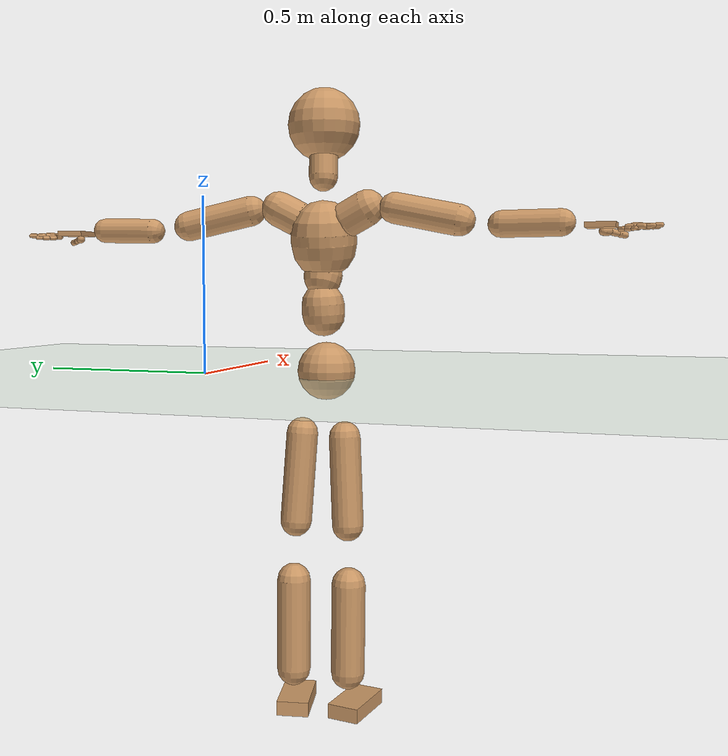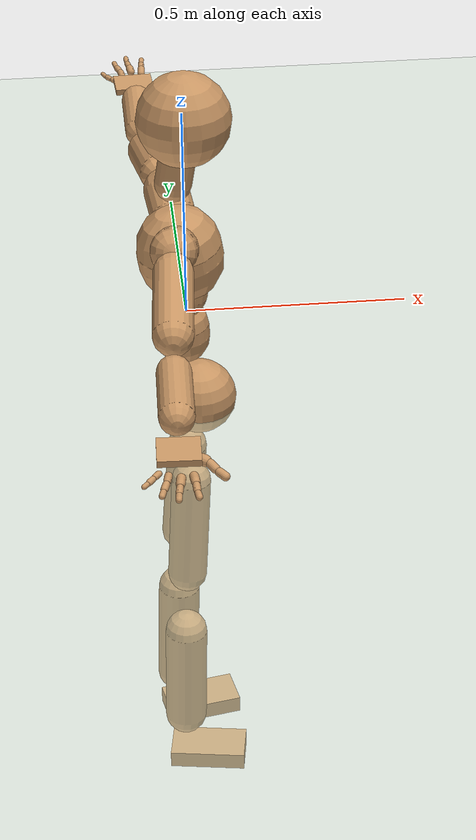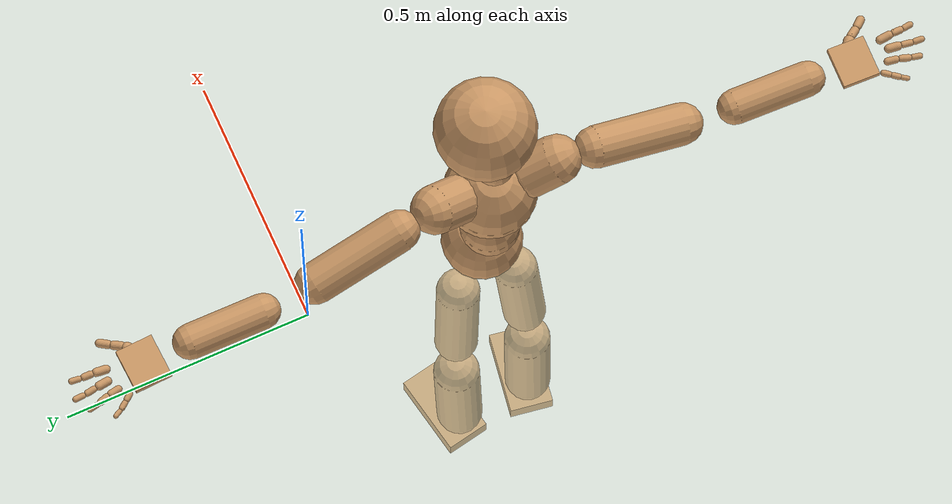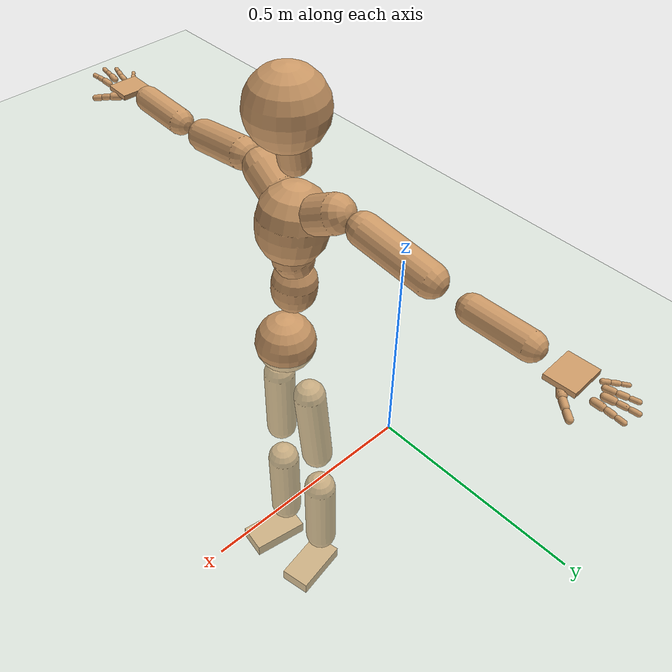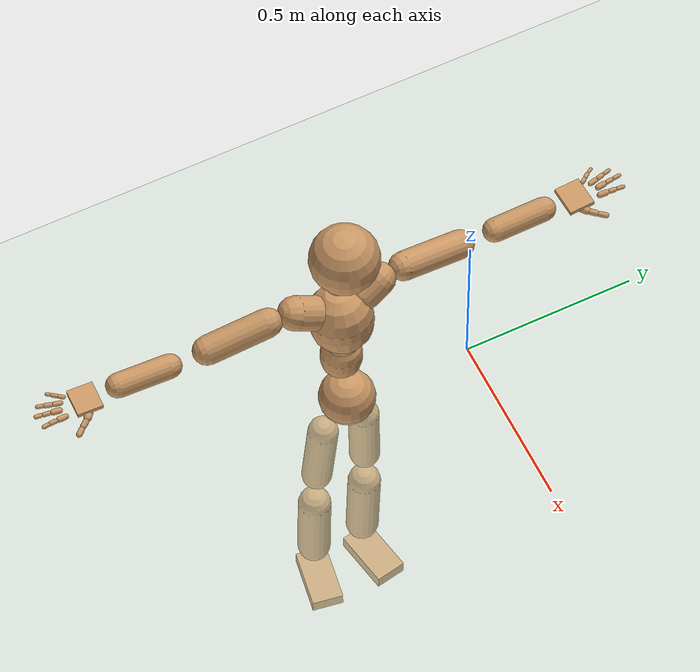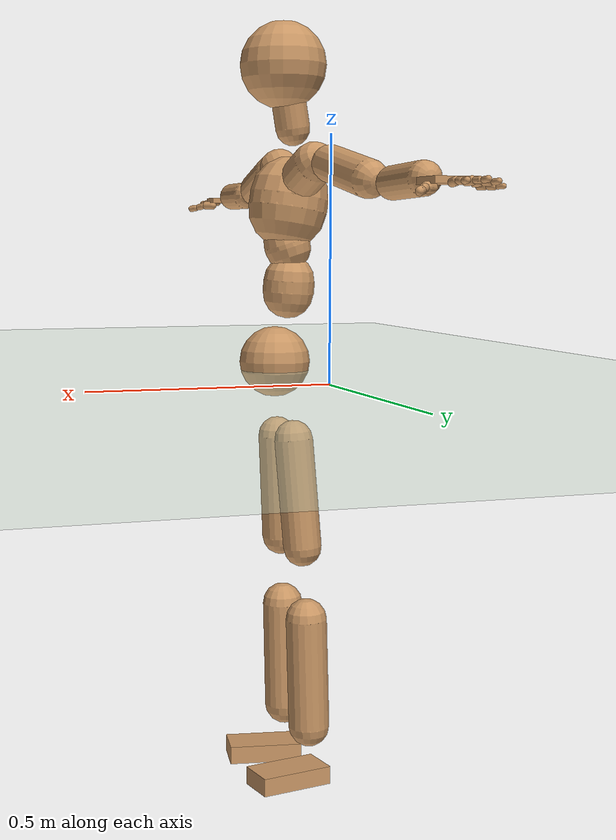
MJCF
<mujoco model="humanoid">
  <compiler coordinate="local" angle="radian"/>
  <default>
    <joint damping="0.0" armature="0.01" stiffness="0.0" limited="true"/>
    <geom conaffinity="1" condim="3" contype="7" margin="0.001" rgba="0.8 0.6 .4 1"/>
  </default>
  <asset>
    <texture type="skybox" builtin="gradient" rgb1=".4 .5 .6" rgb2="0 0 0" width="100" height="100"/>
    <texture builtin="flat" height="1278" mark="cross" markrgb="1 1 1" name="texgeom" random="0.01" rgb1="0.8 0.6 0.4" rgb2="0.8 0.6 0.4" type="cube" width="127"/>
    <texture builtin="checker" height="100" name="texplane" rgb1="0 0 0" rgb2="0.8 0.8 0.8" type="2d" width="100"/>
    <material name="MatPlane" reflectance="0.5" shininess="1" specular="1" texrepeat="60 60" texture="texplane"/>
    <material name="geom" texture="texgeom" texuniform="true"/>
  </asset>
  <worldbody>
    <light cutoff="100" diffuse="1 1 1" dir="-0 0 -1.3" directional="true" exponent="1" pos="0 0 1.3" specular=".1 .1 .1"/>
    <geom conaffinity="1" condim="3" name="floor" pos="0 0 0" rgba="0.8 0.9 0.8 1" size="100 100 .2" type="plane" material="MatPlane"/>
    <body name="Pelvis" pos="-0.0002 -0.3642 0.0171">
      <freejoint name="Pelvis"/>
      <geom type="sphere" contype="1" conaffinity="1" density="500" size="0.0795" pos="0.0000 0.0000 0.0000" name="Pelvis"/>
      <body name="L_Hip" pos="-0.0192 0.0575 -0.0892">
        <joint name="L_Hip_x" type="hinge" pos="0 0 0" axis="1 0 0" stiffness="800" damping="80" armature="0.02" range="-180.0000 180.0000"/>
        <joint name="L_Hip_y" type="hinge" pos="0 0 0" axis="0 1 0" stiffness="800" damping="80" armature="0.02" range="-180.0000 180.0000"/>
        <joint name="L_Hip_z" type="hinge" pos="0 0 0" axis="0 0 1" stiffness="800" damping="80" armature="0.02" range="-180.0000 180.0000"/>
        <geom type="capsule" contype="1" conaffinity="1" density="500" fromto="-0.0058 0.0042 -0.0819 -0.0232 0.0168 -0.3278" size="0.0432" name="L_Hip"/>
        <body name="L_Knee" pos="-0.029 0.021 -0.4097">
          <joint name="L_Knee_x" type="hinge" pos="0 0 0" axis="1 0 0" stiffness="800" damping="80" armature="0.02" range="-180.0000 180.0000"/>
          <joint name="L_Knee_y" type="hinge" pos="0 0 0" axis="0 1 0" stiffness="800" damping="80" armature="0.02" range="-180.0000 180.0000"/>
          <joint name="L_Knee_z" type="hinge" pos="0 0 0" axis="0 0 1" stiffness="800" damping="80" armature="0.02" range="-180.0000 180.0000"/>
          <geom type="capsule" contype="1" conaffinity="1" density="500" fromto="-0.0028 -0.0007 -0.0844 -0.0113 -0.0030 -0.3374" size="0.0467" name="L_Knee"/>
          <body name="L_Ankle" pos="-0.0142 -0.0037 -0.4218">
            <joint name="L_Ankle_x" type="hinge" pos="0 0 0" axis="1 0 0" stiffness="800" damping="80" armature="0.02" range="-180.0000 180.0000"/>
            <joint name="L_Ankle_y" type="hinge" pos="0 0 0" axis="0 1 0" stiffness="800" damping="80" armature="0.02" range="-180.0000 180.0000"/>
            <joint name="L_Ankle_z" type="hinge" pos="0 0 0" axis="0 0 1" stiffness="800" damping="80" armature="0.02" range="-180.0000 180.0000"/>
            <geom type="box" contype="1" conaffinity="1" density="500" pos="0.0555 0.0104 -0.0245" size="0.0849 0.0447 0.0204" quat="0.9957 0.0000 0.0000 0.0929" name="L_Ankle"/>
            <body name="L_Toe" pos="0.1109 0.0209 -0.0489">
              <joint name="L_Toe_x" type="hinge" pos="0 0 0" axis="1 0 0" stiffness="500" damping="50" armature="0.02" range="-180.0000 180.0000"/>
              <joint name="L_Toe_y" type="hinge" pos="0 0 0" axis="0 1 0" stiffness="500" damping="50" armature="0.02" range="-180.0000 180.0000"/>
              <joint name="L_Toe_z" type="hinge" pos="0 0 0" axis="0 0 1" stiffness="500" damping="50" armature="0.02" range="-180.0000 180.0000"/>
              <geom type="box" contype="1" conaffinity="1" density="500" pos="0.0000 0.0000 0.0244" size="0.0008 0.0022 0.001" quat="0.9950 0.0000 0.0000 0.0997" name="L_Toe"/>
            </body>
          </body>
        </body>
      </body>
      <body name="R_Hip" pos="-0.021 -0.056 -0.0962">
        <joint name="R_Hip_x" type="hinge" pos="0 0 0" axis="1 0 0" stiffness="800" damping="80" armature="0.02" range="-180.0000 180.0000"/>
        <joint name="R_Hip_y" type="hinge" pos="0 0 0" axis="0 1 0" stiffness="800" damping="80" armature="0.02" range="-180.0000 180.0000"/>
        <joint name="R_Hip_z" type="hinge" pos="0 0 0" axis="0 0 1" stiffness="800" damping="80" armature="0.02" range="-180.0000 180.0000"/>
        <geom type="capsule" contype="1" conaffinity="1" density="500" fromto="-0.0047 -0.0047 -0.0810 -0.0188 -0.0190 -0.3241" size="0.0428" name="R_Hip"/>
        <body name="R_Knee" pos="-0.0235 -0.0237 -0.4051">
          <joint name="R_Knee_x" type="hinge" pos="0 0 0" axis="1 0 0" stiffness="800" damping="80" armature="0.02" range="-180.0000 180.0000"/>
          <joint name="R_Knee_y" type="hinge" pos="0 0 0" axis="0 1 0" stiffness="800" damping="80" armature="0.02" range="-180.0000 180.0000"/>
          <joint name="R_Knee_z" type="hinge" pos="0 0 0" axis="0 0 1" stiffness="800" damping="80" armature="0.02" range="-180.0000 180.0000"/>
          <geom type="capsule" contype="1" conaffinity="1" density="500" fromto="-0.0019 -0.0002 -0.0826 -0.0077 -0.0007 -0.3305" size="0.0467" name="R_Knee"/>
          <body name="R_Ankle" pos="-0.0097 -0.0008 -0.4131">
            <joint name="R_Ankle_x" type="hinge" pos="0 0 0" axis="1 0 0" stiffness="800" damping="80" armature="0.02" range="-180.0000 180.0000"/>
            <joint name="R_Ankle_y" type="hinge" pos="0 0 0" axis="0 1 0" stiffness="800" damping="80" armature="0.02" range="-180.0000 180.0000"/>
            <joint name="R_Ankle_z" type="hinge" pos="0 0 0" axis="0 0 1" stiffness="800" damping="80" armature="0.02" range="-180.0000 180.0000"/>
            <geom type="box" contype="1" conaffinity="1" density="500" pos="0.0522 -0.0084 -0.0265" size="0.0849 0.0447 0.0204" quat="0.9969 0.0000 0.0000 -0.0793" name="R_Ankle"/>
            <body name="R_Toe" pos="0.1044 -0.0167 -0.053">
              <joint name="R_Toe_x" type="hinge" pos="0 0 0" axis="1 0 0" stiffness="500" damping="50" armature="0.02" range="-180.0000 180.0000"/>
              <joint name="R_Toe_y" type="hinge" pos="0 0 0" axis="0 1 0" stiffness="500" damping="50" armature="0.02" range="-180.0000 180.0000"/>
              <joint name="R_Toe_z" type="hinge" pos="0 0 0" axis="0 0 1" stiffness="500" damping="50" armature="0.02" range="-180.0000 180.0000"/>
              <geom type="box" contype="1" conaffinity="1" density="500" pos="0.0000 0.0000 0.0264" size="0.0008 0.0022 0.001" quat="0.9976 0.0000 0.0000 -0.0686" name="R_Toe"/>
            </body>
          </body>
        </body>
      </body>
      <body name="Torso" pos="-0.0293 -0.004 0.1006">
        <joint name="Torso_x" type="hinge" pos="0 0 0" axis="1 0 0" stiffness="1000" damping="100" armature="0.02" range="-180.0000 180.0000"/>
        <joint name="Torso_y" type="hinge" pos="0 0 0" axis="0 1 0" stiffness="1000" damping="100" armature="0.02" range="-180.0000 180.0000"/>
        <joint name="Torso_z" type="hinge" pos="0 0 0" axis="0 0 1" stiffness="1000" damping="100" armature="0.02" range="-180.0000 180.0000"/>
        <geom type="capsule" contype="1" conaffinity="1" density="500" fromto="-0.0046 0.0037 0.0814 -0.0031 0.0025 0.0543" size="0.0579" name="Torso"/>
        <body name="Spine" pos="-0.0077 0.0062 0.1357">
          <joint name="Spine_x" type="hinge" pos="0 0 0" axis="1 0 0" stiffness="1000" damping="100" armature="0.02" range="-180.0000 180.0000"/>
          <joint name="Spine_y" type="hinge" pos="0 0 0" axis="0 1 0" stiffness="1000" damping="100" armature="0.02" range="-180.0000 180.0000"/>
          <joint name="Spine_z" type="hinge" pos="0 0 0" axis="0 0 1" stiffness="1000" damping="100" armature="0.02" range="-180.0000 180.0000"/>
          <geom type="capsule" contype="1" conaffinity="1" density="500" fromto="0.0094 -0.0017 0.0295 0.0063 -0.0011 0.0197" size="0.0521" name="Spine"/>
          <body name="Chest" pos="0.0156 -0.0028 0.0491">
            <joint name="Chest_x" type="hinge" pos="0 0 0" axis="1 0 0" stiffness="1000" damping="100" armature="0.02" range="-180.0000 180.0000"/>
            <joint name="Chest_y" type="hinge" pos="0 0 0" axis="0 1 0" stiffness="1000" damping="100" armature="0.02" range="-180.0000 180.0000"/>
            <joint name="Chest_z" type="hinge" pos="0 0 0" axis="0 0 1" stiffness="1000" damping="100" armature="0.02" range="-180.0000 180.0000"/>
            <geom type="capsule" contype="1" conaffinity="1" density="500" fromto="-0.0135 -0.0013 0.0853 -0.0090 -0.0009 0.0569" size="0.0889" name="Chest"/>
            <body name="Neck" pos="-0.0278 -0.0048 0.2001">
              <joint name="Neck_x" type="hinge" pos="0 0 0" axis="1 0 0" stiffness="500" damping="50" armature="0.02" range="-180.0000 180.0000"/>
              <joint name="Neck_y" type="hinge" pos="0 0 0" axis="0 1 0" stiffness="500" damping="50" armature="0.02" range="-180.0000 180.0000"/>
              <joint name="Neck_z" type="hinge" pos="0 0 0" axis="0 0 1" stiffness="500" damping="50" armature="0.02" range="-180.0000 180.0000"/>
              <geom type="capsule" contype="1" conaffinity="1" density="500" fromto="0.0062 0.0016 0.0345 0.0248 0.0065 0.1378" size="0.0385" name="Neck"/>
              <body name="Head" pos="0.031 0.0081 0.1723">
                <joint name="Head_x" type="hinge" pos="0 0 0" axis="1 0 0" stiffness="500" damping="50" armature="0.02" range="-180.0000 180.0000"/>
                <joint name="Head_y" type="hinge" pos="0 0 0" axis="0 1 0" stiffness="500" damping="50" armature="0.02" range="-180.0000 180.0000"/>
                <joint name="Head_z" type="hinge" pos="0 0 0" axis="0 0 1" stiffness="500" damping="50" armature="0.02" range="-180.0000 180.0000"/>
                <geom type="sphere" contype="1" conaffinity="1" density="500" size="0.0963" pos="0.0000 0.0000 0.0000" name="Head"/>
              </body>
            </body>
            <body name="L_Thorax" pos="-0.0171 0.0489 0.1153">
              <joint name="L_Thorax_x" type="hinge" pos="0 0 0" axis="1 0 0" stiffness="500" damping="50" armature="0.02" range="-180.0000 180.0000"/>
              <joint name="L_Thorax_y" type="hinge" pos="0 0 0" axis="0 1 0" stiffness="500" damping="50" armature="0.02" range="-180.0000 180.0000"/>
              <joint name="L_Thorax_z" type="hinge" pos="0 0 0" axis="0 0 1" stiffness="500" damping="50" armature="0.02" range="-180.0000 180.0000"/>
              <geom type="capsule" contype="1" conaffinity="1" density="500" fromto="-0.0031 0.0176 0.0092 -0.0125 0.0702 0.0369" size="0.0471" name="L_Thorax"/>
              <body name="L_Shoulder" pos="-0.0156 0.0878 0.0461">
                <joint name="L_Shoulder_x" type="hinge" pos="0 0 0" axis="1 0 0" stiffness="500" damping="50" armature="0.02" range="-180.0000 180.0000"/>
                <joint name="L_Shoulder_y" type="hinge" pos="0 0 0" axis="0 1 0" stiffness="500" damping="50" armature="0.02" range="-180.0000 180.0000"/>
                <joint name="L_Shoulder_z" type="hinge" pos="0 0 0" axis="0 0 1" stiffness="500" damping="50" armature="0.02" range="-180.0000 180.0000"/>
                <geom type="capsule" contype="1" conaffinity="1" density="500" fromto="-0.0059 0.0592 -0.0130 -0.0236 0.2370 -0.0519" size="0.0402" name="L_Shoulder"/>
                <body name="L_Elbow" pos="-0.0294 0.2962 -0.0649">
                  <joint name="L_Elbow_x" type="hinge" pos="0 0 0" axis="1 0 0" stiffness="500" damping="50" armature="0.02" range="-720.0000 720.0000"/>
                  <joint name="L_Elbow_y" type="hinge" pos="0 0 0" axis="0 1 0" stiffness="500" damping="50" armature="0.02" range="-720.0000 720.0000"/>
                  <joint name="L_Elbow_z" type="hinge" pos="0 0 0" axis="0 0 1" stiffness="500" damping="50" armature="0.02" range="-720.0000 720.0000"/>
                  <geom type="capsule" contype="1" conaffinity="1" density="500" fromto="-0.0001 0.0488 0.0011 -0.0004 0.1954 0.0046" size="0.0337" name="L_Elbow"/>
                  <body name="L_Wrist" pos="-0.0005 0.2442 0.0057">
                    <joint name="L_Wrist_x" type="hinge" pos="0 0 0" axis="1 0 0" stiffness="300" damping="30" armature="0.02" range="-180.0000 180.0000"/>
                    <joint name="L_Wrist_y" type="hinge" pos="0 0 0" axis="0 1 0" stiffness="300" damping="30" armature="0.02" range="-180.0000 180.0000"/>
                    <joint name="L_Wrist_z" type="hinge" pos="0 0 0" axis="0 0 1" stiffness="300" damping="30" armature="0.02" range="-180.0000 180.0000"/>
                    <geom type="box" contype="1" conaffinity="1" density="500" pos="-0.0023 0.0455 -0.0088" size="0.0364 0.0429 0.0066" quat="0.7249 0.0000 0.0000 -0.6888" name="L_Wrist"/>
                    <body name="L_Index1" pos="0.0184 0.106 -0.0155">
                      <joint name="L_Index1_x" type="hinge" pos="0 0 0" axis="1 0 0" stiffness="100" damping="10" armature="0.02" range="-180.0000 180.0000"/>
                      <joint name="L_Index1_y" type="hinge" pos="0 0 0" axis="0 1 0" stiffness="100" damping="10" armature="0.02" range="-180.0000 180.0000"/>
                      <joint name="L_Index1_z" type="hinge" pos="0 0 0" axis="0 0 1" stiffness="100" damping="10" armature="0.02" range="-180.0000 180.0000"/>
                      <geom type="capsule" contype="1" conaffinity="1" density="500" fromto="0.0005 0.0063 0.0005 0.0019 0.0252 0.0022" size="0.0084" name="L_Index1"/>
                      <body name="L_Index2" pos="0.0024 0.0315 0.0027">
                        <joint name="L_Index2_x" type="hinge" pos="0 0 0" axis="1 0 0" stiffness="100" damping="10" armature="0.02" range="-180.0000 180.0000"/>
                        <joint name="L_Index2_y" type="hinge" pos="0 0 0" axis="0 1 0" stiffness="100" damping="10" armature="0.02" range="-180.0000 180.0000"/>
                        <joint name="L_Index2_z" type="hinge" pos="0 0 0" axis="0 0 1" stiffness="100" damping="10" armature="0.02" range="-180.0000 180.0000"/>
                        <geom type="capsule" contype="1" conaffinity="1" density="500" fromto="0.0001 0.0045 -0.0003 0.0004 0.0179 -0.0011" size="0.007" name="L_Index2"/>
                        <body name="L_Index3" pos="0.0005 0.0224 -0.0014">
                          <joint name="L_Index3_x" type="hinge" pos="0 0 0" axis="1 0 0" stiffness="100" damping="10" armature="0.02" range="-180.0000 180.0000"/>
                          <joint name="L_Index3_y" type="hinge" pos="0 0 0" axis="0 1 0" stiffness="100" damping="10" armature="0.02" range="-180.0000 180.0000"/>
                          <joint name="L_Index3_z" type="hinge" pos="0 0 0" axis="0 0 1" stiffness="100" damping="10" armature="0.02" range="-180.0000 180.0000"/>
                          <geom type="capsule" contype="1" conaffinity="1" density="500" fromto="0.0005 0.0049 0.0001 0.0020 0.0195 0.0005" size="0.006" name="L_Index3"/>
                        </body>
                      </body>
                    </body>
                    <body name="L_Middle1" pos="-0.0032 0.1131 -0.0134">
                      <joint name="L_Middle1_x" type="hinge" pos="0 0 0" axis="1 0 0" stiffness="100" damping="10" armature="0.02" range="-180.0000 180.0000"/>
                      <joint name="L_Middle1_y" type="hinge" pos="0 0 0" axis="0 1 0" stiffness="100" damping="10" armature="0.02" range="-180.0000 180.0000"/>
                      <joint name="L_Middle1_z" type="hinge" pos="0 0 0" axis="0 0 1" stiffness="100" damping="10" armature="0.02" range="-180.0000 180.0000"/>
                      <geom type="capsule" contype="1" conaffinity="1" density="500" fromto="-0.0008 0.0060 0.0003 -0.0032 0.0238 0.0010" size="0.0085" name="L_Middle1"/>
                      <body name="L_Middle2" pos="-0.004 0.0298 0.0013">
                        <joint name="L_Middle2_x" type="hinge" pos="0 0 0" axis="1 0 0" stiffness="100" damping="10" armature="0.02" range="-180.0000 180.0000"/>
                        <joint name="L_Middle2_y" type="hinge" pos="0 0 0" axis="0 1 0" stiffness="100" damping="10" armature="0.02" range="-180.0000 180.0000"/>
                        <joint name="L_Middle2_z" type="hinge" pos="0 0 0" axis="0 0 1" stiffness="100" damping="10" armature="0.02" range="-180.0000 180.0000"/>
                        <geom type="capsule" contype="1" conaffinity="1" density="500" fromto="-0.0008 0.0046 -0.0001 -0.0031 0.0186 -0.0004" size="0.0065" name="L_Middle2"/>
                        <body name="L_Middle3" pos="-0.0038 0.0232 -0.0005">
                          <joint name="L_Middle3_x" type="hinge" pos="0 0 0" axis="1 0 0" stiffness="100" damping="10" armature="0.02" range="-180.0000 180.0000"/>
                          <joint name="L_Middle3_y" type="hinge" pos="0 0 0" axis="0 1 0" stiffness="100" damping="10" armature="0.02" range="-180.0000 180.0000"/>
                          <joint name="L_Middle3_z" type="hinge" pos="0 0 0" axis="0 0 1" stiffness="100" damping="10" armature="0.02" range="-180.0000 180.0000"/>
                          <geom type="capsule" contype="1" conaffinity="1" density="500" fromto="-0.0004 0.0050 0.0003 -0.0015 0.0202 0.0012" size="0.0059" name="L_Middle3"/>
                        </body>
                      </body>
                    </body>
                    <body name="L_Pinky1" pos="-0.0391 0.0883 -0.0212">
                      <joint name="L_Pinky1_x" type="hinge" pos="0 0 0" axis="1 0 0" stiffness="100" damping="10" armature="0.02" range="-180.0000 180.0000"/>
                      <joint name="L_Pinky1_y" type="hinge" pos="0 0 0" axis="0 1 0" stiffness="100" damping="10" armature="0.02" range="-180.0000 180.0000"/>
                      <joint name="L_Pinky1_z" type="hinge" pos="0 0 0" axis="0 0 1" stiffness="100" damping="10" armature="0.02" range="-180.0000 180.0000"/>
                      <geom type="capsule" contype="1" conaffinity="1" density="500" fromto="-0.0023 0.0029 -0.0000 -0.0092 0.0116 -0.0002" size="0.0061" name="L_Pinky1"/>
                      <body name="L_Pinky2" pos="-0.0115 0.0145 -0.0002">
                        <joint name="L_Pinky2_x" type="hinge" pos="0 0 0" axis="1 0 0" stiffness="100" damping="10" armature="0.02" range="-180.0000 180.0000"/>
                        <joint name="L_Pinky2_y" type="hinge" pos="0 0 0" axis="0 1 0" stiffness="100" damping="10" armature="0.02" range="-180.0000 180.0000"/>
                        <joint name="L_Pinky2_z" type="hinge" pos="0 0 0" axis="0 0 1" stiffness="100" damping="10" armature="0.02" range="-180.0000 180.0000"/>
                        <geom type="capsule" contype="1" conaffinity="1" density="500" fromto="-0.0023 0.0029 -0.0001 -0.0091 0.0117 -0.0005" size="0.0059" name="L_Pinky2"/>
                        <body name="L_Pinky3" pos="-0.0113 0.0146 -0.0006">
                          <joint name="L_Pinky3_x" type="hinge" pos="0 0 0" axis="1 0 0" stiffness="100" damping="10" armature="0.02" range="-180.0000 180.0000"/>
                          <joint name="L_Pinky3_y" type="hinge" pos="0 0 0" axis="0 1 0" stiffness="100" damping="10" armature="0.02" range="-180.0000 180.0000"/>
                          <joint name="L_Pinky3_z" type="hinge" pos="0 0 0" axis="0 0 1" stiffness="100" damping="10" armature="0.02" range="-180.0000 180.0000"/>
                          <geom type="capsule" contype="1" conaffinity="1" density="500" fromto="-0.0019 0.0033 0.0003 -0.0075 0.0133 0.0011" size="0.0048" name="L_Pinky3"/>
                        </body>
                      </body>
                    </body>
                    <body name="L_Ring1" pos="-0.0243 0.1013 -0.0162">
                      <joint name="L_Ring1_x" type="hinge" pos="0 0 0" axis="1 0 0" stiffness="100" damping="10" armature="0.02" range="-180.0000 180.0000"/>
                      <joint name="L_Ring1_y" type="hinge" pos="0 0 0" axis="0 1 0" stiffness="100" damping="10" armature="0.02" range="-180.0000 180.0000"/>
                      <joint name="L_Ring1_z" type="hinge" pos="0 0 0" axis="0 0 1" stiffness="100" damping="10" armature="0.02" range="-180.0000 180.0000"/>
                      <geom type="capsule" contype="1" conaffinity="1" density="500" fromto="-0.0011 0.0054 0.0004 -0.0042 0.0215 0.0014" size="0.0073" name="L_Ring1"/>
                      <body name="L_Ring2" pos="-0.0053 0.0269 0.0018">
                        <joint name="L_Ring2_x" type="hinge" pos="0 0 0" axis="1 0 0" stiffness="100" damping="10" armature="0.02" range="-180.0000 180.0000"/>
                        <joint name="L_Ring2_y" type="hinge" pos="0 0 0" axis="0 1 0" stiffness="100" damping="10" armature="0.02" range="-180.0000 180.0000"/>
                        <joint name="L_Ring2_z" type="hinge" pos="0 0 0" axis="0 0 1" stiffness="100" damping="10" armature="0.02" range="-180.0000 180.0000"/>
                        <geom type="capsule" contype="1" conaffinity="1" density="500" fromto="-0.0014 0.0044 -0.0002 -0.0056 0.0177 -0.0007" size="0.0069" name="L_Ring2"/>
                        <body name="L_Ring3" pos="-0.007 0.0221 -0.0008">
                          <joint name="L_Ring3_x" type="hinge" pos="0 0 0" axis="1 0 0" stiffness="100" damping="10" armature="0.02" range="-180.0000 180.0000"/>
                          <joint name="L_Ring3_y" type="hinge" pos="0 0 0" axis="0 1 0" stiffness="100" damping="10" armature="0.02" range="-180.0000 180.0000"/>
                          <joint name="L_Ring3_z" type="hinge" pos="0 0 0" axis="0 0 1" stiffness="100" damping="10" armature="0.02" range="-180.0000 180.0000"/>
                          <geom type="capsule" contype="1" conaffinity="1" density="500" fromto="-0.0010 0.0048 0.0002 -0.0040 0.0193 0.0009" size="0.0056" name="L_Ring3"/>
                        </body>
                      </body>
                    </body>
                    <body name="L_Thumb1" pos="0.0249 0.046 -0.022">
                      <joint name="L_Thumb1_x" type="hinge" pos="0 0 0" axis="1 0 0" stiffness="100" damping="10" armature="0.02" range="-180.0000 180.0000"/>
                      <joint name="L_Thumb1_y" type="hinge" pos="0 0 0" axis="0 1 0" stiffness="100" damping="10" armature="0.02" range="-180.0000 180.0000"/>
                      <joint name="L_Thumb1_z" type="hinge" pos="0 0 0" axis="0 0 1" stiffness="100" damping="10" armature="0.02" range="-180.0000 180.0000"/>
                      <geom type="capsule" contype="1" conaffinity="1" density="500" fromto="0.0046 0.0035 -0.0000 0.0184 0.0141 -0.0000" size="0.0111" name="L_Thumb1"/>
                      <body name="L_Thumb2" pos="0.0231 0.0176 0">
                        <joint name="L_Thumb2_x" type="hinge" pos="0 0 0" axis="1 0 0" stiffness="100" damping="10" armature="0.02" range="-180.0000 180.0000"/>
                        <joint name="L_Thumb2_y" type="hinge" pos="0 0 0" axis="0 1 0" stiffness="100" damping="10" armature="0.02" range="-180.0000 180.0000"/>
                        <joint name="L_Thumb2_z" type="hinge" pos="0 0 0" axis="0 0 1" stiffness="100" damping="10" armature="0.02" range="-180.0000 180.0000"/>
                        <geom type="capsule" contype="1" conaffinity="1" density="500" fromto="0.0029 0.0041 -0.0011 0.0114 0.0166 -0.0044" size="0.0086" name="L_Thumb2"/>
                        <body name="L_Thumb3" pos="0.0143 0.0207 -0.0055">
                          <joint name="L_Thumb3_x" type="hinge" pos="0 0 0" axis="1 0 0" stiffness="100" damping="10" armature="0.02" range="-180.0000 180.0000"/>
                          <joint name="L_Thumb3_y" type="hinge" pos="0 0 0" axis="0 1 0" stiffness="100" damping="10" armature="0.02" range="-180.0000 180.0000"/>
                          <joint name="L_Thumb3_z" type="hinge" pos="0 0 0" axis="0 0 1" stiffness="100" damping="10" armature="0.02" range="-180.0000 180.0000"/>
                          <geom type="capsule" contype="1" conaffinity="1" density="500" fromto="0.0033 0.0045 -0.0007 0.0130 0.0182 -0.0028" size="0.0082" name="L_Thumb3"/>
                        </body>
                      </body>
                    </body>
                  </body>
                </body>
              </body>
            </body>
            <body name="R_Thorax" pos="-0.0228 -0.0507 0.1112">
              <joint name="R_Thorax_x" type="hinge" pos="0 0 0" axis="1 0 0" stiffness="500" damping="50" armature="0.02" range="-180.0000 180.0000"/>
              <joint name="R_Thorax_y" type="hinge" pos="0 0 0" axis="0 1 0" stiffness="500" damping="50" armature="0.02" range="-180.0000 180.0000"/>
              <joint name="R_Thorax_z" type="hinge" pos="0 0 0" axis="0 0 1" stiffness="500" damping="50" armature="0.02" range="-180.0000 180.0000"/>
              <geom type="capsule" contype="1" conaffinity="1" density="500" fromto="-0.0021 -0.0189 0.0096 -0.0083 -0.0754 0.0386" size="0.048" name="R_Thorax"/>
              <body name="R_Shoulder" pos="-0.0104 -0.0943 0.0482">
                <joint name="R_Shoulder_x" type="hinge" pos="0 0 0" axis="1 0 0" stiffness="500" damping="50" armature="0.02" range="-180.0000 180.0000"/>
                <joint name="R_Shoulder_y" type="hinge" pos="0 0 0" axis="0 1 0" stiffness="500" damping="50" armature="0.02" range="-180.0000 180.0000"/>
                <joint name="R_Shoulder_z" type="hinge" pos="0 0 0" axis="0 0 1" stiffness="500" damping="50" armature="0.02" range="-180.0000 180.0000"/>
                <geom type="capsule" contype="1" conaffinity="1" density="500" fromto="-0.0044 -0.0572 -0.0118 -0.0176 -0.2289 -0.0474" size="0.0405" name="R_Shoulder"/>
                <body name="R_Elbow" pos="-0.022 -0.2861 -0.0592">
                  <joint name="R_Elbow_x" type="hinge" pos="0 0 0" axis="1 0 0" stiffness="500" damping="50" armature="0.02" range="-720.0000 720.0000"/>
                  <joint name="R_Elbow_y" type="hinge" pos="0 0 0" axis="0 1 0" stiffness="500" damping="50" armature="0.02" range="-720.0000 720.0000"/>
                  <joint name="R_Elbow_z" type="hinge" pos="0 0 0" axis="0 0 1" stiffness="500" damping="50" armature="0.02" range="-720.0000 720.0000"/>
                  <geom type="capsule" contype="1" conaffinity="1" density="500" fromto="-0.0018 -0.0491 0.0003 -0.0071 -0.1964 0.0011" size="0.0339" name="R_Elbow"/>
                  <body name="R_Wrist" pos="-0.0089 -0.2455 0.0014">
                    <joint name="R_Wrist_x" type="hinge" pos="0 0 0" axis="1 0 0" stiffness="300" damping="30" armature="0.02" range="-180.0000 180.0000"/>
                    <joint name="R_Wrist_y" type="hinge" pos="0 0 0" axis="0 1 0" stiffness="300" damping="30" armature="0.02" range="-180.0000 180.0000"/>
                    <joint name="R_Wrist_z" type="hinge" pos="0 0 0" axis="0 0 1" stiffness="300" damping="30" armature="0.02" range="-180.0000 180.0000"/>
                    <geom type="box" contype="1" conaffinity="1" density="500" pos="-0.0017 -0.0448 -0.0085" size="0.0364 0.0401 0.0067" quat="0.7203 0.0000 0.0000 0.6936" name="R_Wrist"/>
                    <body name="R_Index1" pos="0.0197 -0.1046 -0.0149">
                      <joint name="R_Index1_x" type="hinge" pos="0 0 0" axis="1 0 0" stiffness="100" damping="10" armature="0.02" range="-180.0000 180.0000"/>
                      <joint name="R_Index1_y" type="hinge" pos="0 0 0" axis="0 1 0" stiffness="100" damping="10" armature="0.02" range="-180.0000 180.0000"/>
                      <joint name="R_Index1_z" type="hinge" pos="0 0 0" axis="0 0 1" stiffness="100" damping="10" armature="0.02" range="-180.0000 180.0000"/>
                      <geom type="capsule" contype="1" conaffinity="1" density="500" fromto="0.0005 -0.0063 0.0005 0.0019 -0.0252 0.0022" size="0.0084" name="R_Index1"/>
                      <body name="R_Index2" pos="0.0024 -0.0315 0.0027">
                        <joint name="R_Index2_x" type="hinge" pos="0 0 0" axis="1 0 0" stiffness="100" damping="10" armature="0.02" range="-180.0000 180.0000"/>
                        <joint name="R_Index2_y" type="hinge" pos="0 0 0" axis="0 1 0" stiffness="100" damping="10" armature="0.02" range="-180.0000 180.0000"/>
                        <joint name="R_Index2_z" type="hinge" pos="0 0 0" axis="0 0 1" stiffness="100" damping="10" armature="0.02" range="-180.0000 180.0000"/>
                        <geom type="capsule" contype="1" conaffinity="1" density="500" fromto="0.0001 -0.0045 -0.0003 0.0004 -0.0179 -0.0011" size="0.007" name="R_Index2"/>
                        <body name="R_Index3" pos="0.0005 -0.0224 -0.0014">
                          <joint name="R_Index3_x" type="hinge" pos="0 0 0" axis="1 0 0" stiffness="100" damping="10" armature="0.02" range="-180.0000 180.0000"/>
                          <joint name="R_Index3_y" type="hinge" pos="0 0 0" axis="0 1 0" stiffness="100" damping="10" armature="0.02" range="-180.0000 180.0000"/>
                          <joint name="R_Index3_z" type="hinge" pos="0 0 0" axis="0 0 1" stiffness="100" damping="10" armature="0.02" range="-180.0000 180.0000"/>
                          <geom type="capsule" contype="1" conaffinity="1" density="500" fromto="0.0005 -0.0041 0.0001 0.0020 -0.0163 0.0005" size="0.0063" name="R_Index3"/>
                        </body>
                      </body>
                    </body>
                    <body name="R_Middle1" pos="-0.0019 -0.1117 -0.0128">
                      <joint name="R_Middle1_x" type="hinge" pos="0 0 0" axis="1 0 0" stiffness="100" damping="10" armature="0.02" range="-180.0000 180.0000"/>
                      <joint name="R_Middle1_y" type="hinge" pos="0 0 0" axis="0 1 0" stiffness="100" damping="10" armature="0.02" range="-180.0000 180.0000"/>
                      <joint name="R_Middle1_z" type="hinge" pos="0 0 0" axis="0 0 1" stiffness="100" damping="10" armature="0.02" range="-180.0000 180.0000"/>
                      <geom type="capsule" contype="1" conaffinity="1" density="500" fromto="-0.0008 -0.0060 0.0003 -0.0032 -0.0238 0.0010" size="0.0085" name="R_Middle1"/>
                      <body name="R_Middle2" pos="-0.004 -0.0298 0.0013">
                        <joint name="R_Middle2_x" type="hinge" pos="0 0 0" axis="1 0 0" stiffness="100" damping="10" armature="0.02" range="-180.0000 180.0000"/>
                        <joint name="R_Middle2_y" type="hinge" pos="0 0 0" axis="0 1 0" stiffness="100" damping="10" armature="0.02" range="-180.0000 180.0000"/>
                        <joint name="R_Middle2_z" type="hinge" pos="0 0 0" axis="0 0 1" stiffness="100" damping="10" armature="0.02" range="-180.0000 180.0000"/>
                        <geom type="capsule" contype="1" conaffinity="1" density="500" fromto="-0.0008 -0.0046 -0.0001 -0.0031 -0.0186 -0.0004" size="0.0065" name="R_Middle2"/>
                        <body name="R_Middle3" pos="-0.0038 -0.0232 -0.0005">
                          <joint name="R_Middle3_x" type="hinge" pos="0 0 0" axis="1 0 0" stiffness="100" damping="10" armature="0.02" range="-180.0000 180.0000"/>
                          <joint name="R_Middle3_y" type="hinge" pos="0 0 0" axis="0 1 0" stiffness="100" damping="10" armature="0.02" range="-180.0000 180.0000"/>
                          <joint name="R_Middle3_z" type="hinge" pos="0 0 0" axis="0 0 1" stiffness="100" damping="10" armature="0.02" range="-180.0000 180.0000"/>
                          <geom type="capsule" contype="1" conaffinity="1" density="500" fromto="-0.0004 -0.0042 0.0003 -0.0015 -0.0170 0.0012" size="0.0062" name="R_Middle3"/>
                        </body>
                      </body>
                    </body>
                    <body name="R_Pinky1" pos="-0.0379 -0.087 -0.0206">
                      <joint name="R_Pinky1_x" type="hinge" pos="0 0 0" axis="1 0 0" stiffness="100" damping="10" armature="0.02" range="-180.0000 180.0000"/>
                      <joint name="R_Pinky1_y" type="hinge" pos="0 0 0" axis="0 1 0" stiffness="100" damping="10" armature="0.02" range="-180.0000 180.0000"/>
                      <joint name="R_Pinky1_z" type="hinge" pos="0 0 0" axis="0 0 1" stiffness="100" damping="10" armature="0.02" range="-180.0000 180.0000"/>
                      <geom type="capsule" contype="1" conaffinity="1" density="500" fromto="-0.0023 -0.0029 -0.0000 -0.0092 -0.0116 -0.0002" size="0.0061" name="R_Pinky1"/>
                      <body name="R_Pinky2" pos="-0.0115 -0.0145 -0.0002">
                        <joint name="R_Pinky2_x" type="hinge" pos="0 0 0" axis="1 0 0" stiffness="100" damping="10" armature="0.02" range="-180.0000 180.0000"/>
                        <joint name="R_Pinky2_y" type="hinge" pos="0 0 0" axis="0 1 0" stiffness="100" damping="10" armature="0.02" range="-180.0000 180.0000"/>
                        <joint name="R_Pinky2_z" type="hinge" pos="0 0 0" axis="0 0 1" stiffness="100" damping="10" armature="0.02" range="-180.0000 180.0000"/>
                        <geom type="capsule" contype="1" conaffinity="1" density="500" fromto="-0.0023 -0.0029 -0.0001 -0.0091 -0.0117 -0.0005" size="0.0059" name="R_Pinky2"/>
                        <body name="R_Pinky3" pos="-0.0113 -0.0146 -0.0006">
                          <joint name="R_Pinky3_x" type="hinge" pos="0 0 0" axis="1 0 0" stiffness="100" damping="10" armature="0.02" range="-180.0000 180.0000"/>
                          <joint name="R_Pinky3_y" type="hinge" pos="0 0 0" axis="0 1 0" stiffness="100" damping="10" armature="0.02" range="-180.0000 180.0000"/>
                          <joint name="R_Pinky3_z" type="hinge" pos="0 0 0" axis="0 0 1" stiffness="100" damping="10" armature="0.02" range="-180.0000 180.0000"/>
                          <geom type="capsule" contype="1" conaffinity="1" density="500" fromto="-0.0019 -0.0025 0.0003 -0.0075 -0.0101 0.0011" size="0.005" name="R_Pinky3"/>
                        </body>
                      </body>
                    </body>
                    <body name="R_Ring1" pos="-0.023 -0.0999 -0.0156">
                      <joint name="R_Ring1_x" type="hinge" pos="0 0 0" axis="1 0 0" stiffness="100" damping="10" armature="0.02" range="-180.0000 180.0000"/>
                      <joint name="R_Ring1_y" type="hinge" pos="0 0 0" axis="0 1 0" stiffness="100" damping="10" armature="0.02" range="-180.0000 180.0000"/>
                      <joint name="R_Ring1_z" type="hinge" pos="0 0 0" axis="0 0 1" stiffness="100" damping="10" armature="0.02" range="-180.0000 180.0000"/>
                      <geom type="capsule" contype="1" conaffinity="1" density="500" fromto="-0.0011 -0.0054 0.0004 -0.0042 -0.0215 0.0014" size="0.0073" name="R_Ring1"/>
                      <body name="R_Ring2" pos="-0.0053 -0.0269 0.0018">
                        <joint name="R_Ring2_x" type="hinge" pos="0 0 0" axis="1 0 0" stiffness="100" damping="10" armature="0.02" range="-180.0000 180.0000"/>
                        <joint name="R_Ring2_y" type="hinge" pos="0 0 0" axis="0 1 0" stiffness="100" damping="10" armature="0.02" range="-180.0000 180.0000"/>
                        <joint name="R_Ring2_z" type="hinge" pos="0 0 0" axis="0 0 1" stiffness="100" damping="10" armature="0.02" range="-180.0000 180.0000"/>
                        <geom type="capsule" contype="1" conaffinity="1" density="500" fromto="-0.0014 -0.0044 -0.0002 -0.0056 -0.0177 -0.0007" size="0.0069" name="R_Ring2"/>
                        <body name="R_Ring3" pos="-0.007 -0.0221 -0.0008">
                          <joint name="R_Ring3_x" type="hinge" pos="0 0 0" axis="1 0 0" stiffness="100" damping="10" armature="0.02" range="-180.0000 180.0000"/>
                          <joint name="R_Ring3_y" type="hinge" pos="0 0 0" axis="0 1 0" stiffness="100" damping="10" armature="0.02" range="-180.0000 180.0000"/>
                          <joint name="R_Ring3_z" type="hinge" pos="0 0 0" axis="0 0 1" stiffness="100" damping="10" armature="0.02" range="-180.0000 180.0000"/>
                          <geom type="capsule" contype="1" conaffinity="1" density="500" fromto="-0.0010 -0.0040 0.0002 -0.0040 -0.0161 0.0009" size="0.0059" name="R_Ring3"/>
                        </body>
                      </body>
                    </body>
                    <body name="R_Thumb1" pos="0.0262 -0.0446 -0.0214">
                      <joint name="R_Thumb1_x" type="hinge" pos="0 0 0" axis="1 0 0" stiffness="100" damping="10" armature="0.02" range="-180.0000 180.0000"/>
                      <joint name="R_Thumb1_y" type="hinge" pos="0 0 0" axis="0 1 0" stiffness="100" damping="10" armature="0.02" range="-180.0000 180.0000"/>
                      <joint name="R_Thumb1_z" type="hinge" pos="0 0 0" axis="0 0 1" stiffness="100" damping="10" armature="0.02" range="-180.0000 180.0000"/>
                      <geom type="capsule" contype="1" conaffinity="1" density="500" fromto="0.0046 -0.0035 -0.0000 0.0184 -0.0141 -0.0000" size="0.0111" name="R_Thumb1"/>
                      <body name="R_Thumb2" pos="0.0231 -0.0176 0">
                        <joint name="R_Thumb2_x" type="hinge" pos="0 0 0" axis="1 0 0" stiffness="100" damping="10" armature="0.02" range="-180.0000 180.0000"/>
                        <joint name="R_Thumb2_y" type="hinge" pos="0 0 0" axis="0 1 0" stiffness="100" damping="10" armature="0.02" range="-180.0000 180.0000"/>
                        <joint name="R_Thumb2_z" type="hinge" pos="0 0 0" axis="0 0 1" stiffness="100" damping="10" armature="0.02" range="-180.0000 180.0000"/>
                        <geom type="capsule" contype="1" conaffinity="1" density="500" fromto="0.0029 -0.0041 -0.0011 0.0114 -0.0166 -0.0044" size="0.0086" name="R_Thumb2"/>
                        <body name="R_Thumb3" pos="0.0143 -0.0207 -0.0055">
                          <joint name="R_Thumb3_x" type="hinge" pos="0 0 0" axis="1 0 0" stiffness="100" damping="10" armature="0.02" range="-180.0000 180.0000"/>
                          <joint name="R_Thumb3_y" type="hinge" pos="0 0 0" axis="0 1 0" stiffness="100" damping="10" armature="0.02" range="-180.0000 180.0000"/>
                          <joint name="R_Thumb3_z" type="hinge" pos="0 0 0" axis="0 0 1" stiffness="100" damping="10" armature="0.02" range="-180.0000 180.0000"/>
                          <geom type="capsule" contype="1" conaffinity="1" density="500" fromto="0.0033 -0.0037 -0.0007 0.0130 -0.0150 -0.0028" size="0.0084" name="R_Thumb3"/>
                        </body>
                      </body>
                    </body>
                  </body>
                </body>
              </body>
            </body>
          </body>
        </body>
      </body>
    </body>
  </worldbody>
  <actuator>
    <motor name="L_Hip_x" joint="L_Hip_x" gear="500"/>
    <motor name="L_Hip_y" joint="L_Hip_y" gear="500"/>
    <motor name="L_Hip_z" joint="L_Hip_z" gear="500"/>
    <motor name="L_Knee_x" joint="L_Knee_x" gear="500"/>
    <motor name="L_Knee_y" joint="L_Knee_y" gear="500"/>
    <motor name="L_Knee_z" joint="L_Knee_z" gear="500"/>
    <motor name="L_Ankle_x" joint="L_Ankle_x" gear="500"/>
    <motor name="L_Ankle_y" joint="L_Ankle_y" gear="500"/>
    <motor name="L_Ankle_z" joint="L_Ankle_z" gear="500"/>
    <motor name="L_Toe_x" joint="L_Toe_x" gear="500"/>
    <motor name="L_Toe_y" joint="L_Toe_y" gear="500"/>
    <motor name="L_Toe_z" joint="L_Toe_z" gear="500"/>
    <motor name="R_Hip_x" joint="R_Hip_x" gear="500"/>
    <motor name="R_Hip_y" joint="R_Hip_y" gear="500"/>
    <motor name="R_Hip_z" joint="R_Hip_z" gear="500"/>
    <motor name="R_Knee_x" joint="R_Knee_x" gear="500"/>
    <motor name="R_Knee_y" joint="R_Knee_y" gear="500"/>
    <motor name="R_Knee_z" joint="R_Knee_z" gear="500"/>
    <motor name="R_Ankle_x" joint="R_Ankle_x" gear="500"/>
    <motor name="R_Ankle_y" joint="R_Ankle_y" gear="500"/>
    <motor name="R_Ankle_z" joint="R_Ankle_z" gear="500"/>
    <motor name="R_Toe_x" joint="R_Toe_x" gear="500"/>
    <motor name="R_Toe_y" joint="R_Toe_y" gear="500"/>
    <motor name="R_Toe_z" joint="R_Toe_z" gear="500"/>
    <motor name="Torso_x" joint="Torso_x" gear="500"/>
    <motor name="Torso_y" joint="Torso_y" gear="500"/>
    <motor name="Torso_z" joint="Torso_z" gear="500"/>
    <motor name="Spine_x" joint="Spine_x" gear="500"/>
    <motor name="Spine_y" joint="Spine_y" gear="500"/>
    <motor name="Spine_z" joint="Spine_z" gear="500"/>
    <motor name="Chest_x" joint="Chest_x" gear="500"/>
    <motor name="Chest_y" joint="Chest_y" gear="500"/>
    <motor name="Chest_z" joint="Chest_z" gear="500"/>
    <motor name="Neck_x" joint="Neck_x" gear="500"/>
    <motor name="Neck_y" joint="Neck_y" gear="500"/>
    <motor name="Neck_z" joint="Neck_z" gear="500"/>
    <motor name="Head_x" joint="Head_x" gear="500"/>
    <motor name="Head_y" joint="Head_y" gear="500"/>
    <motor name="Head_z" joint="Head_z" gear="500"/>
    <motor name="L_Thorax_x" joint="L_Thorax_x" gear="500"/>
    <motor name="L_Thorax_y" joint="L_Thorax_y" gear="500"/>
    <motor name="L_Thorax_z" joint="L_Thorax_z" gear="500"/>
    <motor name="L_Shoulder_x" joint="L_Shoulder_x" gear="500"/>
    <motor name="L_Shoulder_y" joint="L_Shoulder_y" gear="500"/>
    <motor name="L_Shoulder_z" joint="L_Shoulder_z" gear="500"/>
    <motor name="L_Elbow_x" joint="L_Elbow_x" gear="500"/>
    <motor name="L_Elbow_y" joint="L_Elbow_y" gear="500"/>
    <motor name="L_Elbow_z" joint="L_Elbow_z" gear="500"/>
    <motor name="L_Wrist_x" joint="L_Wrist_x" gear="500"/>
    <motor name="L_Wrist_y" joint="L_Wrist_y" gear="500"/>
    <motor name="L_Wrist_z" joint="L_Wrist_z" gear="500"/>
    <motor name="L_Index1_x" joint="L_Index1_x" gear="500"/>
    <motor name="L_Index1_y" joint="L_Index1_y" gear="500"/>
    <motor name="L_Index1_z" joint="L_Index1_z" gear="500"/>
    <motor name="L_Index2_x" joint="L_Index2_x" gear="500"/>
    <motor name="L_Index2_y" joint="L_Index2_y" gear="500"/>
    <motor name="L_Index2_z" joint="L_Index2_z" gear="500"/>
    <motor name="L_Index3_x" joint="L_Index3_x" gear="500"/>
    <motor name="L_Index3_y" joint="L_Index3_y" gear="500"/>
    <motor name="L_Index3_z" joint="L_Index3_z" gear="500"/>
    <motor name="L_Middle1_x" joint="L_Middle1_x" gear="500"/>
    <motor name="L_Middle1_y" joint="L_Middle1_y" gear="500"/>
    <motor name="L_Middle1_z" joint="L_Middle1_z" gear="500"/>
    <motor name="L_Middle2_x" joint="L_Middle2_x" gear="500"/>
    <motor name="L_Middle2_y" joint="L_Middle2_y" gear="500"/>
    <motor name="L_Middle2_z" joint="L_Middle2_z" gear="500"/>
    <motor name="L_Middle3_x" joint="L_Middle3_x" gear="500"/>
    <motor name="L_Middle3_y" joint="L_Middle3_y" gear="500"/>
    <motor name="L_Middle3_z" joint="L_Middle3_z" gear="500"/>
    <motor name="L_Pinky1_x" joint="L_Pinky1_x" gear="500"/>
    <motor name="L_Pinky1_y" joint="L_Pinky1_y" gear="500"/>
    <motor name="L_Pinky1_z" joint="L_Pinky1_z" gear="500"/>
    <motor name="L_Pinky2_x" joint="L_Pinky2_x" gear="500"/>
    <motor name="L_Pinky2_y" joint="L_Pinky2_y" gear="500"/>
    <motor name="L_Pinky2_z" joint="L_Pinky2_z" gear="500"/>
    <motor name="L_Pinky3_x" joint="L_Pinky3_x" gear="500"/>
    <motor name="L_Pinky3_y" joint="L_Pinky3_y" gear="500"/>
    <motor name="L_Pinky3_z" joint="L_Pinky3_z" gear="500"/>
    <motor name="L_Ring1_x" joint="L_Ring1_x" gear="500"/>
    <motor name="L_Ring1_y" joint="L_Ring1_y" gear="500"/>
    <motor name="L_Ring1_z" joint="L_Ring1_z" gear="500"/>
    <motor name="L_Ring2_x" joint="L_Ring2_x" gear="500"/>
    <motor name="L_Ring2_y" joint="L_Ring2_y" gear="500"/>
    <motor name="L_Ring2_z" joint="L_Ring2_z" gear="500"/>
    <motor name="L_Ring3_x" joint="L_Ring3_x" gear="500"/>
    <motor name="L_Ring3_y" joint="L_Ring3_y" gear="500"/>
    <motor name="L_Ring3_z" joint="L_Ring3_z" gear="500"/>
    <motor name="L_Thumb1_x" joint="L_Thumb1_x" gear="500"/>
    <motor name="L_Thumb1_y" joint="L_Thumb1_y" gear="500"/>
    <motor name="L_Thumb1_z" joint="L_Thumb1_z" gear="500"/>
    <motor name="L_Thumb2_x" joint="L_Thumb2_x" gear="500"/>
    <motor name="L_Thumb2_y" joint="L_Thumb2_y" gear="500"/>
    <motor name="L_Thumb2_z" joint="L_Thumb2_z" gear="500"/>
    <motor name="L_Thumb3_x" joint="L_Thumb3_x" gear="500"/>
    <motor name="L_Thumb3_y" joint="L_Thumb3_y" gear="500"/>
    <motor name="L_Thumb3_z" joint="L_Thumb3_z" gear="500"/>
    <motor name="R_Thorax_x" joint="R_Thorax_x" gear="500"/>
    <motor name="R_Thorax_y" joint="R_Thorax_y" gear="500"/>
    <motor name="R_Thorax_z" joint="R_Thorax_z" gear="500"/>
    <motor name="R_Shoulder_x" joint="R_Shoulder_x" gear="500"/>
    <motor name="R_Shoulder_y" joint="R_Shoulder_y" gear="500"/>
    <motor name="R_Shoulder_z" joint="R_Shoulder_z" gear="500"/>
    <motor name="R_Elbow_x" joint="R_Elbow_x" gear="500"/>
    <motor name="R_Elbow_y" joint="R_Elbow_y" gear="500"/>
    <motor name="R_Elbow_z" joint="R_Elbow_z" gear="500"/>
    <motor name="R_Wrist_x" joint="R_Wrist_x" gear="500"/>
    <motor name="R_Wrist_y" joint="R_Wrist_y" gear="500"/>
    <motor name="R_Wrist_z" joint="R_Wrist_z" gear="500"/>
    <motor name="R_Index1_x" joint="R_Index1_x" gear="500"/>
    <motor name="R_Index1_y" joint="R_Index1_y" gear="500"/>
    <motor name="R_Index1_z" joint="R_Index1_z" gear="500"/>
    <motor name="R_Index2_x" joint="R_Index2_x" gear="500"/>
    <motor name="R_Index2_y" joint="R_Index2_y" gear="500"/>
    <motor name="R_Index2_z" joint="R_Index2_z" gear="500"/>
    <motor name="R_Index3_x" joint="R_Index3_x" gear="500"/>
    <motor name="R_Index3_y" joint="R_Index3_y" gear="500"/>
    <motor name="R_Index3_z" joint="R_Index3_z" gear="500"/>
    <motor name="R_Middle1_x" joint="R_Middle1_x" gear="500"/>
    <motor name="R_Middle1_y" joint="R_Middle1_y" gear="500"/>
    <motor name="R_Middle1_z" joint="R_Middle1_z" gear="500"/>
    <motor name="R_Middle2_x" joint="R_Middle2_x" gear="500"/>
    <motor name="R_Middle2_y" joint="R_Middle2_y" gear="500"/>
    <motor name="R_Middle2_z" joint="R_Middle2_z" gear="500"/>
    <motor name="R_Middle3_x" joint="R_Middle3_x" gear="500"/>
    <motor name="R_Middle3_y" joint="R_Middle3_y" gear="500"/>
    <motor name="R_Middle3_z" joint="R_Middle3_z" gear="500"/>
    <motor name="R_Pinky1_x" joint="R_Pinky1_x" gear="500"/>
    <motor name="R_Pinky1_y" joint="R_Pinky1_y" gear="500"/>
    <motor name="R_Pinky1_z" joint="R_Pinky1_z" gear="500"/>
    <motor name="R_Pinky2_x" joint="R_Pinky2_x" gear="500"/>
    <motor name="R_Pinky2_y" joint="R_Pinky2_y" gear="500"/>
    <motor name="R_Pinky2_z" joint="R_Pinky2_z" gear="500"/>
    <motor name="R_Pinky3_x" joint="R_Pinky3_x" gear="500"/>
    <motor name="R_Pinky3_y" joint="R_Pinky3_y" gear="500"/>
    <motor name="R_Pinky3_z" joint="R_Pinky3_z" gear="500"/>
    <motor name="R_Ring1_x" joint="R_Ring1_x" gear="500"/>
    <motor name="R_Ring1_y" joint="R_Ring1_y" gear="500"/>
    <motor name="R_Ring1_z" joint="R_Ring1_z" gear="500"/>
    <motor name="R_Ring2_x" joint="R_Ring2_x" gear="500"/>
    <motor name="R_Ring2_y" joint="R_Ring2_y" gear="500"/>
    <motor name="R_Ring2_z" joint="R_Ring2_z" gear="500"/>
    <motor name="R_Ring3_x" joint="R_Ring3_x" gear="500"/>
    <motor name="R_Ring3_y" joint="R_Ring3_y" gear="500"/>
    <motor name="R_Ring3_z" joint="R_Ring3_z" gear="500"/>
    <motor name="R_Thumb1_x" joint="R_Thumb1_x" gear="500"/>
    <motor name="R_Thumb1_y" joint="R_Thumb1_y" gear="500"/>
    <motor name="R_Thumb1_z" joint="R_Thumb1_z" gear="500"/>
    <motor name="R_Thumb2_x" joint="R_Thumb2_x" gear="500"/>
    <motor name="R_Thumb2_y" joint="R_Thumb2_y" gear="500"/>
    <motor name="R_Thumb2_z" joint="R_Thumb2_z" gear="500"/>
    <motor name="R_Thumb3_x" joint="R_Thumb3_x" gear="500"/>
    <motor name="R_Thumb3_y" joint="R_Thumb3_y" gear="500"/>
    <motor name="R_Thumb3_z" joint="R_Thumb3_z" gear="500"/>
  </actuator>
  <contact>
    <exclude body1="Torso" body2="Chest"/>
    <exclude body1="Head" body2="Chest"/>
    <exclude body1="R_Knee" body2="R_Toe"/>
    <exclude body1="R_Knee" body2="L_Ankle"/>
    <exclude body1="R_Knee" body2="L_Toe"/>
    <exclude body1="L_Knee" body2="L_Toe"/>
    <exclude body1="L_Knee" body2="R_Ankle"/>
    <exclude body1="L_Knee" body2="R_Toe"/>
    <exclude body1="L_Shoulder" body2="Chest"/>
    <exclude body1="R_Shoulder" body2="Chest"/>
  </contact>
  <sensor/>
  <size njmax="700" nconmax="700"/>
</mujoco>
